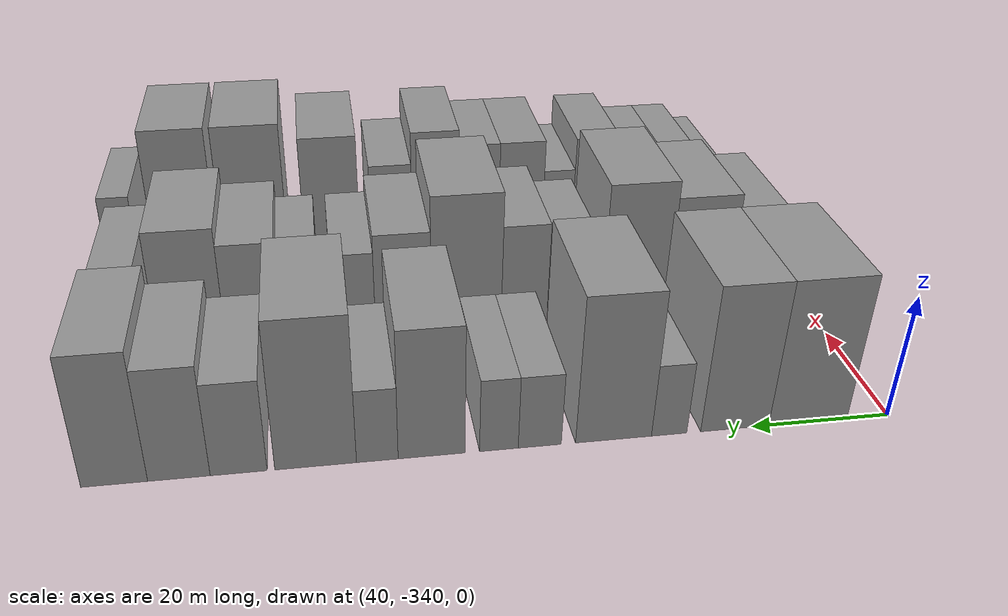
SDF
<sdf version="1.6">
 <world name="default">
  <model name="building_1">
   <static>1</static>
   <pose>50.0000 -328.2224 0 0.000000 0.000000 0.000000</pose>
   <link name="link">
    <pose>0 0 12.00 0 0 0</pose>
    <collision name="collision"><geometry><box><size>20.0000 11.5552 24.0000</size></box></geometry></collision>
    <visual name="visual">
     <cast_shadows>0</cast_shadows>
     <geometry><box><size>20.0000 11.5552 24.0000</size></box></geometry>
     <material>
      <script>
       <uri>model://grey_wall/materials/scripts</uri>
       <uri>model://grey_wall/materials/textures</uri>
       <name>vrc/grey_wall</name>
      </script>
     </material>
    </visual>
   </link>
  </model>
  <model name="building_2">
   <static>1</static>
   <pose>50.0000 -317.5008 0 0.000000 0.000000 0.000000</pose>
   <link name="link">
    <pose>0 0 12.00 0 0 0</pose>
    <collision name="collision"><geometry><box><size>20.0000 9.8880 24.0000</size></box></geometry></collision>
    <visual name="visual">
     <cast_shadows>0</cast_shadows>
     <geometry><box><size>20.0000 9.8880 24.0000</size></box></geometry>
     <material>
      <script>
       <uri>model://grey_wall/materials/scripts</uri>
       <uri>model://grey_wall/materials/textures</uri>
       <name>vrc/grey_wall</name>
      </script>
     </material>
    </visual>
   </link>
  </model>
  <model name="building_3">
   <static>1</static>
   <pose>50.0000 -308.0317 0 0.000000 0.000000 0.000000</pose>
   <link name="link">
    <pose>0 0 6.00 0 0 0</pose>
    <collision name="collision"><geometry><box><size>20.0000 5.0502 12.0000</size></box></geometry></collision>
    <visual name="visual">
     <cast_shadows>0</cast_shadows>
     <geometry><box><size>20.0000 5.0502 12.0000</size></box></geometry>
     <material>
      <script>
       <uri>model://grey_wall/materials/scripts</uri>
       <uri>model://grey_wall/materials/textures</uri>
       <name>vrc/grey_wall</name>
      </script>
     </material>
    </visual>
   </link>
  </model>
  <model name="building_4">
   <static>1</static>
   <pose>50.0000 -300.1355 0 0.000000 0.000000 0.000000</pose>
   <link name="link">
    <pose>0 0 12.00 0 0 0</pose>
    <collision name="collision"><geometry><box><size>20.0000 10.7421 24.0000</size></box></geometry></collision>
    <visual name="visual">
     <cast_shadows>0</cast_shadows>
     <geometry><box><size>20.0000 10.7421 24.0000</size></box></geometry>
     <material>
      <script>
       <uri>model://grey_wall/materials/scripts</uri>
       <uri>model://grey_wall/materials/textures</uri>
       <name>vrc/grey_wall</name>
      </script>
     </material>
    </visual>
   </link>
  </model>
  <model name="building_5">
   <static>1</static>
   <pose>50.0000 -289.7692 0 0.000000 0.000000 0.000000</pose>
   <link name="link">
    <pose>0 0 6.00 0 0 0</pose>
    <collision name="collision"><geometry><box><size>20.0000 5.9904 12.0000</size></box></geometry></collision>
    <visual name="visual">
     <cast_shadows>0</cast_shadows>
     <geometry><box><size>20.0000 5.9904 12.0000</size></box></geometry>
     <material>
      <script>
       <uri>model://grey_wall/materials/scripts</uri>
       <uri>model://grey_wall/materials/textures</uri>
       <name>vrc/grey_wall</name>
      </script>
     </material>
    </visual>
   </link>
  </model>
  <model name="building_6">
   <static>1</static>
   <pose>50.0000 -284.1062 0 0.000000 0.000000 0.000000</pose>
   <link name="link">
    <pose>0 0 6.00 0 0 0</pose>
    <collision name="collision"><geometry><box><size>20.0000 5.3357 12.0000</size></box></geometry></collision>
    <visual name="visual">
     <cast_shadows>0</cast_shadows>
     <geometry><box><size>20.0000 5.3357 12.0000</size></box></geometry>
     <material>
      <script>
       <uri>model://grey_wall/materials/scripts</uri>
       <uri>model://grey_wall/materials/textures</uri>
       <name>vrc/grey_wall</name>
      </script>
     </material>
    </visual>
   </link>
  </model>
  <model name="building_7">
   <static>1</static>
   <pose>50.0000 -274.8928 0 0.000000 0.000000 0.000000</pose>
   <link name="link">
    <pose>0 0 10.50 0 0 0</pose>
    <collision name="collision"><geometry><box><size>20.0000 9.0911 21.0000</size></box></geometry></collision>
    <visual name="visual">
     <cast_shadows>0</cast_shadows>
     <geometry><box><size>20.0000 9.0911 21.0000</size></box></geometry>
     <material>
      <script>
       <uri>model://grey_wall/materials/scripts</uri>
       <uri>model://grey_wall/materials/textures</uri>
       <name>vrc/grey_wall</name>
      </script>
     </material>
    </visual>
   </link>
  </model>
  <model name="building_8">
   <static>1</static>
   <pose>50.0000 -267.5456 0 0.000000 0.000000 0.000000</pose>
   <link name="link">
    <pose>0 0 6.00 0 0 0</pose>
    <collision name="collision"><geometry><box><size>20.0000 5.6033 12.0000</size></box></geometry></collision>
    <visual name="visual">
     <cast_shadows>0</cast_shadows>
     <geometry><box><size>20.0000 5.6033 12.0000</size></box></geometry>
     <material>
      <script>
       <uri>model://grey_wall/materials/scripts</uri>
       <uri>model://grey_wall/materials/textures</uri>
       <name>vrc/grey_wall</name>
      </script>
     </material>
    </visual>
   </link>
  </model>
  <model name="building_9">
   <static>1</static>
   <pose>50.0000 -259.3172 0 0.000000 0.000000 0.000000</pose>
   <link name="link">
    <pose>0 0 12.00 0 0 0</pose>
    <collision name="collision"><geometry><box><size>20.0000 10.8535 24.0000</size></box></geometry></collision>
    <visual name="visual">
     <cast_shadows>0</cast_shadows>
     <geometry><box><size>20.0000 10.8535 24.0000</size></box></geometry>
     <material>
      <script>
       <uri>model://grey_wall/materials/scripts</uri>
       <uri>model://grey_wall/materials/textures</uri>
       <name>vrc/grey_wall</name>
      </script>
     </material>
    </visual>
   </link>
  </model>
  <model name="building_10">
   <static>1</static>
   <pose>50.0000 -249.1697 0 0.000000 0.000000 0.000000</pose>
   <link name="link">
    <pose>0 0 7.50 0 0 0</pose>
    <collision name="collision"><geometry><box><size>20.0000 7.4414 15.0000</size></box></geometry></collision>
    <visual name="visual">
     <cast_shadows>0</cast_shadows>
     <geometry><box><size>20.0000 7.4414 15.0000</size></box></geometry>
     <material>
      <script>
       <uri>model://grey_wall/materials/scripts</uri>
       <uri>model://grey_wall/materials/textures</uri>
       <name>vrc/grey_wall</name>
      </script>
     </material>
    </visual>
   </link>
  </model>
  <model name="building_11">
   <static>1</static>
   <pose>50.0000 -241.4162 0 0.000000 0.000000 0.000000</pose>
   <link name="link">
    <pose>0 0 9.00 0 0 0</pose>
    <collision name="collision"><geometry><box><size>20.0000 8.0657 18.0000</size></box></geometry></collision>
    <visual name="visual">
     <cast_shadows>0</cast_shadows>
     <geometry><box><size>20.0000 8.0657 18.0000</size></box></geometry>
     <material>
      <script>
       <uri>model://grey_wall/materials/scripts</uri>
       <uri>model://grey_wall/materials/textures</uri>
       <name>vrc/grey_wall</name>
      </script>
     </material>
    </visual>
   </link>
  </model>
  <model name="building_12">
   <static>1</static>
   <pose>50.0000 -233.1106 0 0.000000 0.000000 0.000000</pose>
   <link name="link">
    <pose>0 0 10.50 0 0 0</pose>
    <collision name="collision"><geometry><box><size>20.0000 8.5455 21.0000</size></box></geometry></collision>
    <visual name="visual">
     <cast_shadows>0</cast_shadows>
     <geometry><box><size>20.0000 8.5455 21.0000</size></box></geometry>
     <material>
      <script>
       <uri>model://grey_wall/materials/scripts</uri>
       <uri>model://grey_wall/materials/textures</uri>
       <name>vrc/grey_wall</name>
      </script>
     </material>
    </visual>
   </link>
  </model>
  <model name="building_77">
   <static>1</static>
   <pose>79.0000 -330.9791 0 0.000000 0.000000 0.000000</pose>
   <link name="link">
    <pose>0 0 9.00 0 0 0</pose>
    <collision name="collision"><geometry><box><size>20.0000 8.0417 18.0000</size></box></geometry></collision>
    <visual name="visual">
     <cast_shadows>0</cast_shadows>
     <geometry><box><size>20.0000 8.0417 18.0000</size></box></geometry>
     <material>
      <script>
       <uri>model://grey_wall/materials/scripts</uri>
       <uri>model://grey_wall/materials/textures</uri>
       <name>vrc/grey_wall</name>
      </script>
     </material>
    </visual>
   </link>
  </model>
  <model name="building_78">
   <static>1</static>
   <pose>79.0000 -321.8254 0 0.000000 0.000000 0.000000</pose>
   <link name="link">
    <pose>0 0 10.50 0 0 0</pose>
    <collision name="collision"><geometry><box><size>20.0000 10.2656 21.0000</size></box></geometry></collision>
    <visual name="visual">
     <cast_shadows>0</cast_shadows>
     <geometry><box><size>20.0000 10.2656 21.0000</size></box></geometry>
     <material>
      <script>
       <uri>model://grey_wall/materials/scripts</uri>
       <uri>model://grey_wall/materials/textures</uri>
       <name>vrc/grey_wall</name>
      </script>
     </material>
    </visual>
   </link>
  </model>
  <model name="building_79">
   <static>1</static>
   <pose>79.0000 -311.2287 0 0.000000 0.000000 0.000000</pose>
   <link name="link">
    <pose>0 0 12.00 0 0 0</pose>
    <collision name="collision"><geometry><box><size>20.0000 10.9279 24.0000</size></box></geometry></collision>
    <visual name="visual">
     <cast_shadows>0</cast_shadows>
     <geometry><box><size>20.0000 10.9279 24.0000</size></box></geometry>
     <material>
      <script>
       <uri>model://grey_wall/materials/scripts</uri>
       <uri>model://grey_wall/materials/textures</uri>
       <name>vrc/grey_wall</name>
      </script>
     </material>
    </visual>
   </link>
  </model>
  <model name="building_80">
   <static>1</static>
   <pose>79.0000 -301.3405 0 0.000000 0.000000 0.000000</pose>
   <link name="link">
    <pose>0 0 7.50 0 0 0</pose>
    <collision name="collision"><geometry><box><size>20.0000 6.8485 15.0000</size></box></geometry></collision>
    <visual name="visual">
     <cast_shadows>0</cast_shadows>
     <geometry><box><size>20.0000 6.8485 15.0000</size></box></geometry>
     <material>
      <script>
       <uri>model://grey_wall/materials/scripts</uri>
       <uri>model://grey_wall/materials/textures</uri>
       <name>vrc/grey_wall</name>
      </script>
     </material>
    </visual>
   </link>
  </model>
  <model name="building_81">
   <static>1</static>
   <pose>79.0000 -293.2056 0 0.000000 0.000000 0.000000</pose>
   <link name="link">
    <pose>0 0 9.00 0 0 0</pose>
    <collision name="collision"><geometry><box><size>20.0000 7.4212 18.0000</size></box></geometry></collision>
    <visual name="visual">
     <cast_shadows>0</cast_shadows>
     <geometry><box><size>20.0000 7.4212 18.0000</size></box></geometry>
     <material>
      <script>
       <uri>model://grey_wall/materials/scripts</uri>
       <uri>model://grey_wall/materials/textures</uri>
       <name>vrc/grey_wall</name>
      </script>
     </material>
    </visual>
   </link>
  </model>
  <model name="building_82">
   <static>1</static>
   <pose>79.0000 -283.8848 0 0.000000 0.000000 0.000000</pose>
   <link name="link">
    <pose>0 0 12.00 0 0 0</pose>
    <collision name="collision"><geometry><box><size>20.0000 11.2203 24.0000</size></box></geometry></collision>
    <visual name="visual">
     <cast_shadows>0</cast_shadows>
     <geometry><box><size>20.0000 11.2203 24.0000</size></box></geometry>
     <material>
      <script>
       <uri>model://grey_wall/materials/scripts</uri>
       <uri>model://grey_wall/materials/textures</uri>
       <name>vrc/grey_wall</name>
      </script>
     </material>
    </visual>
   </link>
  </model>
  <model name="building_83">
   <static>1</static>
   <pose>79.0000 -273.8857 0 0.000000 0.000000 0.000000</pose>
   <link name="link">
    <pose>0 0 9.00 0 0 0</pose>
    <collision name="collision"><geometry><box><size>20.0000 8.7779 18.0000</size></box></geometry></collision>
    <visual name="visual">
     <cast_shadows>0</cast_shadows>
     <geometry><box><size>20.0000 8.7779 18.0000</size></box></geometry>
     <material>
      <script>
       <uri>model://grey_wall/materials/scripts</uri>
       <uri>model://grey_wall/materials/textures</uri>
       <name>vrc/grey_wall</name>
      </script>
     </material>
    </visual>
   </link>
  </model>
  <model name="building_84">
   <static>1</static>
   <pose>79.0000 -266.2394 0 0.000000 0.000000 0.000000</pose>
   <link name="link">
    <pose>0 0 7.50 0 0 0</pose>
    <collision name="collision"><geometry><box><size>20.0000 6.5146 15.0000</size></box></geometry></collision>
    <visual name="visual">
     <cast_shadows>0</cast_shadows>
     <geometry><box><size>20.0000 6.5146 15.0000</size></box></geometry>
     <material>
      <script>
       <uri>model://grey_wall/materials/scripts</uri>
       <uri>model://grey_wall/materials/textures</uri>
       <name>vrc/grey_wall</name>
      </script>
     </material>
    </visual>
   </link>
  </model>
  <model name="building_85">
   <static>1</static>
   <pose>79.0000 -257.9208 0 0.000000 0.000000 0.000000</pose>
   <link name="link">
    <pose>0 0 7.50 0 0 0</pose>
    <collision name="collision"><geometry><box><size>20.0000 6.1226 15.0000</size></box></geometry></collision>
    <visual name="visual">
     <cast_shadows>0</cast_shadows>
     <geometry><box><size>20.0000 6.1226 15.0000</size></box></geometry>
     <material>
      <script>
       <uri>model://grey_wall/materials/scripts</uri>
       <uri>model://grey_wall/materials/textures</uri>
       <name>vrc/grey_wall</name>
      </script>
     </material>
    </visual>
   </link>
  </model>
  <model name="building_86">
   <static>1</static>
   <pose>79.0000 -250.6059 0 0.000000 0.000000 0.000000</pose>
   <link name="link">
    <pose>0 0 9.00 0 0 0</pose>
    <collision name="collision"><geometry><box><size>20.0000 8.5072 18.0000</size></box></geometry></collision>
    <visual name="visual">
     <cast_shadows>0</cast_shadows>
     <geometry><box><size>20.0000 8.5072 18.0000</size></box></geometry>
     <material>
      <script>
       <uri>model://grey_wall/materials/scripts</uri>
       <uri>model://grey_wall/materials/textures</uri>
       <name>vrc/grey_wall</name>
      </script>
     </material>
    </visual>
   </link>
  </model>
  <model name="building_87">
   <static>1</static>
   <pose>79.0000 -241.1945 0 0.000000 0.000000 0.000000</pose>
   <link name="link">
    <pose>0 0 10.50 0 0 0</pose>
    <collision name="collision"><geometry><box><size>20.0000 10.3157 21.0000</size></box></geometry></collision>
    <visual name="visual">
     <cast_shadows>0</cast_shadows>
     <geometry><box><size>20.0000 10.3157 21.0000</size></box></geometry>
     <material>
      <script>
       <uri>model://grey_wall/materials/scripts</uri>
       <uri>model://grey_wall/materials/textures</uri>
       <name>vrc/grey_wall</name>
      </script>
     </material>
    </visual>
   </link>
  </model>
  <model name="building_88">
   <static>1</static>
   <pose>79.0000 -230.7562 0 0.000000 0.000000 0.000000</pose>
   <link name="link">
    <pose>0 0 7.50 0 0 0</pose>
    <collision name="collision"><geometry><box><size>20.0000 6.5608 15.0000</size></box></geometry></collision>
    <visual name="visual">
     <cast_shadows>0</cast_shadows>
     <geometry><box><size>20.0000 6.5608 15.0000</size></box></geometry>
     <material>
      <script>
       <uri>model://grey_wall/materials/scripts</uri>
       <uri>model://grey_wall/materials/textures</uri>
       <name>vrc/grey_wall</name>
      </script>
     </material>
    </visual>
   </link>
  </model>
  <model name="building_152">
   <static>1</static>
   <pose>108.0000 -332.3818 0 0.000000 0.000000 0.000000</pose>
   <link name="link">
    <pose>0 0 6.00 0 0 0</pose>
    <collision name="collision"><geometry><box><size>20.0000 5.2363 12.0000</size></box></geometry></collision>
    <visual name="visual">
     <cast_shadows>0</cast_shadows>
     <geometry><box><size>20.0000 5.2363 12.0000</size></box></geometry>
     <material>
      <script>
       <uri>model://grey_wall/materials/scripts</uri>
       <uri>model://grey_wall/materials/textures</uri>
       <name>vrc/grey_wall</name>
      </script>
     </material>
    </visual>
   </link>
  </model>
  <model name="building_153">
   <static>1</static>
   <pose>108.0000 -326.6491 0 0.000000 0.000000 0.000000</pose>
   <link name="link">
    <pose>0 0 7.50 0 0 0</pose>
    <collision name="collision"><geometry><box><size>20.0000 6.2292 15.0000</size></box></geometry></collision>
    <visual name="visual">
     <cast_shadows>0</cast_shadows>
     <geometry><box><size>20.0000 6.2292 15.0000</size></box></geometry>
     <material>
      <script>
       <uri>model://grey_wall/materials/scripts</uri>
       <uri>model://grey_wall/materials/textures</uri>
       <name>vrc/grey_wall</name>
      </script>
     </material>
    </visual>
   </link>
  </model>
  <model name="building_154">
   <static>1</static>
   <pose>108.0000 -320.1113 0 0.000000 0.000000 0.000000</pose>
   <link name="link">
    <pose>0 0 7.50 0 0 0</pose>
    <collision name="collision"><geometry><box><size>20.0000 6.8463 15.0000</size></box></geometry></collision>
    <visual name="visual">
     <cast_shadows>0</cast_shadows>
     <geometry><box><size>20.0000 6.8463 15.0000</size></box></geometry>
     <material>
      <script>
       <uri>model://grey_wall/materials/scripts</uri>
       <uri>model://grey_wall/materials/textures</uri>
       <name>vrc/grey_wall</name>
      </script>
     </material>
    </visual>
   </link>
  </model>
  <model name="building_155">
   <static>1</static>
   <pose>108.0000 -311.7636 0 0.000000 0.000000 0.000000</pose>
   <link name="link">
    <pose>0 0 9.00 0 0 0</pose>
    <collision name="collision"><geometry><box><size>20.0000 7.8493 18.0000</size></box></geometry></collision>
    <visual name="visual">
     <cast_shadows>0</cast_shadows>
     <geometry><box><size>20.0000 7.8493 18.0000</size></box></geometry>
     <material>
      <script>
       <uri>model://grey_wall/materials/scripts</uri>
       <uri>model://grey_wall/materials/textures</uri>
       <name>vrc/grey_wall</name>
      </script>
     </material>
    </visual>
   </link>
  </model>
  <model name="building_156">
   <static>1</static>
   <pose>108.0000 -305.0411 0 0.000000 0.000000 0.000000</pose>
   <link name="link">
    <pose>0 0 6.00 0 0 0</pose>
    <collision name="collision"><geometry><box><size>20.0000 5.5956 12.0000</size></box></geometry></collision>
    <visual name="visual">
     <cast_shadows>0</cast_shadows>
     <geometry><box><size>20.0000 5.5956 12.0000</size></box></geometry>
     <material>
      <script>
       <uri>model://grey_wall/materials/scripts</uri>
       <uri>model://grey_wall/materials/textures</uri>
       <name>vrc/grey_wall</name>
      </script>
     </material>
    </visual>
   </link>
  </model>
  <model name="building_157">
   <static>1</static>
   <pose>108.0000 -298.1847 0 0.000000 0.000000 0.000000</pose>
   <link name="link">
    <pose>0 0 9.00 0 0 0</pose>
    <collision name="collision"><geometry><box><size>20.0000 8.1172 18.0000</size></box></geometry></collision>
    <visual name="visual">
     <cast_shadows>0</cast_shadows>
     <geometry><box><size>20.0000 8.1172 18.0000</size></box></geometry>
     <material>
      <script>
       <uri>model://grey_wall/materials/scripts</uri>
       <uri>model://grey_wall/materials/textures</uri>
       <name>vrc/grey_wall</name>
      </script>
     </material>
    </visual>
   </link>
  </model>
  <model name="building_158">
   <static>1</static>
   <pose>108.0000 -290.4383 0 0.000000 0.000000 0.000000</pose>
   <link name="link">
    <pose>0 0 9.00 0 0 0</pose>
    <collision name="collision"><geometry><box><size>20.0000 7.3756 18.0000</size></box></geometry></collision>
    <visual name="visual">
     <cast_shadows>0</cast_shadows>
     <geometry><box><size>20.0000 7.3756 18.0000</size></box></geometry>
     <material>
      <script>
       <uri>model://grey_wall/materials/scripts</uri>
       <uri>model://grey_wall/materials/textures</uri>
       <name>vrc/grey_wall</name>
      </script>
     </material>
    </visual>
   </link>
  </model>
  <model name="building_159">
   <static>1</static>
   <pose>108.0000 -282.5091 0 0.000000 0.000000 0.000000</pose>
   <link name="link">
    <pose>0 0 10.50 0 0 0</pose>
    <collision name="collision"><geometry><box><size>20.0000 8.4830 21.0000</size></box></geometry></collision>
    <visual name="visual">
     <cast_shadows>0</cast_shadows>
     <geometry><box><size>20.0000 8.4830 21.0000</size></box></geometry>
     <material>
      <script>
       <uri>model://grey_wall/materials/scripts</uri>
       <uri>model://grey_wall/materials/textures</uri>
       <name>vrc/grey_wall</name>
      </script>
     </material>
    </visual>
   </link>
  </model>
  <model name="building_160">
   <static>1</static>
   <pose>108.0000 -274.5389 0 0.000000 0.000000 0.000000</pose>
   <link name="link">
    <pose>0 0 7.50 0 0 0</pose>
    <collision name="collision"><geometry><box><size>20.0000 7.4573 15.0000</size></box></geometry></collision>
    <visual name="visual">
     <cast_shadows>0</cast_shadows>
     <geometry><box><size>20.0000 7.4573 15.0000</size></box></geometry>
     <material>
      <script>
       <uri>model://grey_wall/materials/scripts</uri>
       <uri>model://grey_wall/materials/textures</uri>
       <name>vrc/grey_wall</name>
      </script>
     </material>
    </visual>
   </link>
  </model>
  <model name="building_161">
   <static>1</static>
   <pose>108.0000 -263.8609 0 0.000000 0.000000 0.000000</pose>
   <link name="link">
    <pose>0 0 10.50 0 0 0</pose>
    <collision name="collision"><geometry><box><size>20.0000 9.8988 21.0000</size></box></geometry></collision>
    <visual name="visual">
     <cast_shadows>0</cast_shadows>
     <geometry><box><size>20.0000 9.8988 21.0000</size></box></geometry>
     <material>
      <script>
       <uri>model://grey_wall/materials/scripts</uri>
       <uri>model://grey_wall/materials/textures</uri>
       <name>vrc/grey_wall</name>
      </script>
     </material>
    </visual>
   </link>
  </model>
  <model name="building_162">
   <static>1</static>
   <pose>108.0000 -250.2066 0 0.000000 0.000000 0.000000</pose>
   <link name="link">
    <pose>0 0 12.00 0 0 0</pose>
    <collision name="collision"><geometry><box><size>20.0000 11.4098 24.0000</size></box></geometry></collision>
    <visual name="visual">
     <cast_shadows>0</cast_shadows>
     <geometry><box><size>20.0000 11.4098 24.0000</size></box></geometry>
     <material>
      <script>
       <uri>model://grey_wall/materials/scripts</uri>
       <uri>model://grey_wall/materials/textures</uri>
       <name>vrc/grey_wall</name>
      </script>
     </material>
    </visual>
   </link>
  </model>
  <model name="building_163">
   <static>1</static>
   <pose>108.0000 -238.0403 0 0.000000 0.000000 0.000000</pose>
   <link name="link">
    <pose>0 0 12.00 0 0 0</pose>
    <collision name="collision"><geometry><box><size>20.0000 10.9227 24.0000</size></box></geometry></collision>
    <visual name="visual">
     <cast_shadows>0</cast_shadows>
     <geometry><box><size>20.0000 10.9227 24.0000</size></box></geometry>
     <material>
      <script>
       <uri>model://grey_wall/materials/scripts</uri>
       <uri>model://grey_wall/materials/textures</uri>
       <name>vrc/grey_wall</name>
      </script>
     </material>
    </visual>
   </link>
  </model>
  <model name="building_164">
   <static>1</static>
   <pose>108.0000 -226.9149 0 0.000000 0.000000 0.000000</pose>
   <link name="link">
    <pose>0 0 6.00 0 0 0</pose>
    <collision name="collision"><geometry><box><size>20.0000 5.3281 12.0000</size></box></geometry></collision>
    <visual name="visual">
     <cast_shadows>0</cast_shadows>
     <geometry><box><size>20.0000 5.3281 12.0000</size></box></geometry>
     <material>
      <script>
       <uri>model://grey_wall/materials/scripts</uri>
       <uri>model://grey_wall/materials/textures</uri>
       <name>vrc/grey_wall</name>
      </script>
     </material>
    </visual>
   </link>
  </model>
 </world>
</sdf>
